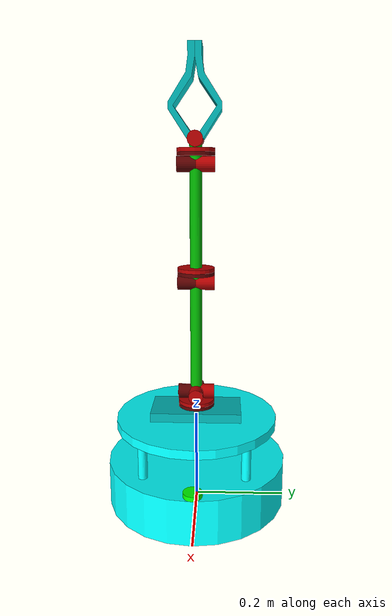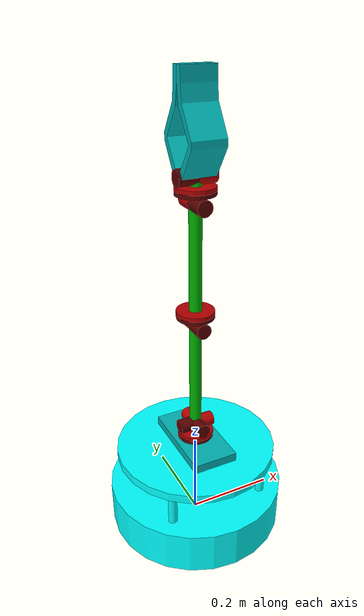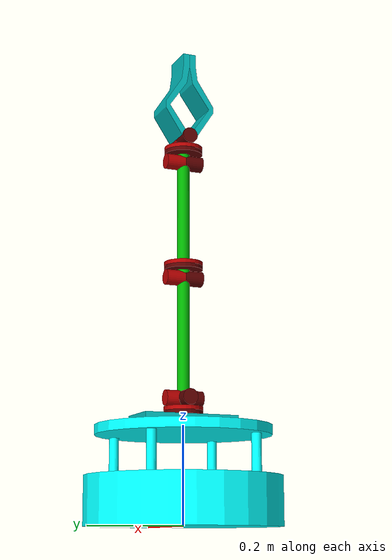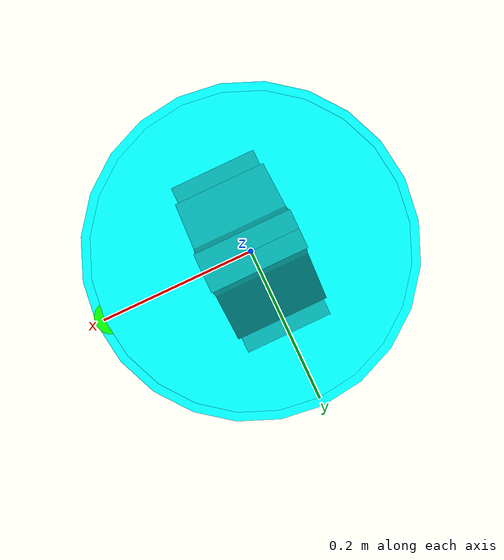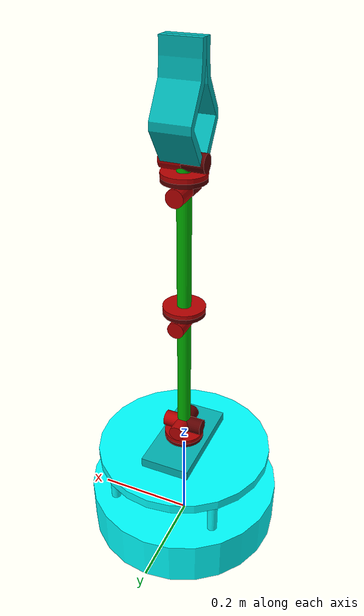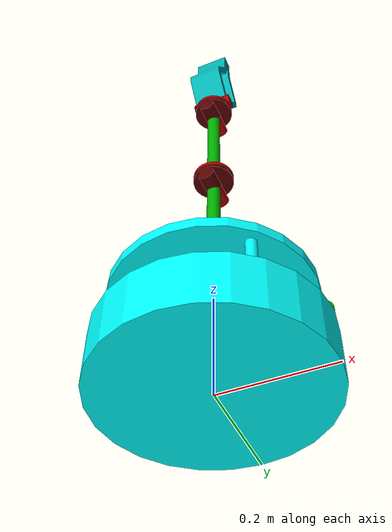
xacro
<?xml version="1.0"?>
<robot name="base_arm" xmlns:xacro="http://ros.org/wiki/xacro">

  <xacro:include filename="simple_move.urdf" />
  <link name="anchor_arm_base"/>
  <joint name="make_anchor" type="fixed">
    <parent link="base_link"/>
    <child  link="anchor_arm_base"/>
    <origin xyz="0.0 0.0 0.2" rpy="0 0 0"/>
  </joint>

  <xacro:include filename="arm.urdf" />
  <joint name="connect_arm" type="fixed">
    <parent link="anchor_arm_base"/>
    <child  link="arm_base"/>
  </joint>

  <gazebo>
    <plugin filename="libgazebo_ros_control.so" name="gazebo_ros_control">
      <robotNamespace>/</robotNamespace>
    </plugin>
  </gazebo>

  <xacro:include filename="gazebo_plugins.xacro" />
  <link name="base_camera_link" />
  <joint name="fixed_main_to_base_camera_link" type="fixed">
    <parent link="main"/>
    <child link="base_camera_link"/>
    <origin rpy="0 0 0" xyz="0.2 0.0 0.15"/>
  </joint>
  <link name="arm_camera_link" />
  <joint name="fixed_main_to_arm_camera_link" type="fixed">
    <parent link="ELBOW_Y_lk"/>
    <child  link="arm_camera_link"/>
    <origin xyz="-0.1 0.12 0" rpy="-1.5707963267948966 0 1.5707963267948966"/>
  </joint>
  <link name="hand_camera_link" />
  <joint name="fixed_main_to_hand_camera_link" type="fixed">
    <parent link="WRIST_Y_lk"/>
    <child  link="hand_camera_link"/>
    <origin xyz="-0.07 0.025 0" rpy="-1.5707963267948966 0 1.5707963267948966"/>
  </joint>
  <xacro:add_gazebo_camera camera_name="base_camera" frame="base_camera_frame" link_name="base_camera_link"
                           rpy="-1.5707963267948966 0 -1.5707963267948966"/>
  <xacro:add_gazebo_camera camera_name="arm_camera"  frame="arm_camera_frame"  link_name="arm_camera_link"
                           rpy="-1.5707963267948966 0 -1.5707963267948966"/>
  <xacro:add_gazebo_camera camera_name="hand_camera" frame="hand_camera_frame" link_name="hand_camera_link"
                           rpy="-1.5707963267948966 0 -1.5707963267948966"/>
</robot>

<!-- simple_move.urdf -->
<!-- |    This document was autogenerated by xacro from hoge.urdf                      | -->
<!-- |    EDITING THIS FILE BY HAND IS NOT RECOMMENDED                                 | -->
<robot name="Simple" xmlns:controller="http://playerstage.sourceforge.net/gazebo/xmlschema/#controller" xmlns:interface="http://playerstage.sourceforge.net/gazebo/xmlschema/#interface" xmlns:sensor="http://playerstage.sourceforge.net/gazebo/xmlschema/#sensor">
  <link name="base_link"/>
  <link name="base_laser_link"/>
  <link name="main">
    <!-- main body -->
    <visual>
      <origin rpy="0 0 0" xyz="0 0 0"/>
      <geometry>
        <cylinder length="0.1" radius="0.2"/>
      </geometry>
      <material name="Cyan">
        <color rgba="0 1.0 1.0 1.0"/>
      </material>
    </visual>
    <!-- upper plate -->
    <visual>
      <origin rpy="0 0 0" xyz="0 0 0.14"/>
      <geometry>
        <cylinder length="0.02" radius="0.18"/>
      </geometry>
      <material name="Cyan">
        <color rgba="0 1.0 1.0 1.0"/>
      </material>
    </visual>
    <!-- poles -->
    <visual>
      <origin rpy="0 0 0" xyz="0.11 0.11 0.09"/>
      <geometry>
        <cylinder length="0.08" radius="0.01"/>
      </geometry>
      <material name="Cyan">
        <color rgba="0 1.0 1.0 1.0"/>
      </material>
    </visual>
    <visual>
      <origin rpy="0 0 0" xyz="-0.11 0.11 0.09"/>
      <geometry>
        <cylinder length="0.08" radius="0.01"/>
      </geometry>
      <material name="Cyan">
        <color rgba="0 1.0 1.0 1.0"/>
      </material>
    </visual>
    <visual>
      <origin rpy="0 0 0" xyz="0.11 -0.11 0.09"/>
      <geometry>
        <cylinder length="0.08" radius="0.01"/>
      </geometry>
      <material name="Cyan">
        <color rgba="0 1.0 1.0 1.0"/>
      </material>
    </visual>
    <visual>
      <origin rpy="0 0 0" xyz="-0.11 -0.11 0.09"/>
      <geometry>
        <cylinder length="0.08" radius="0.01"/>
      </geometry>
      <material name="Cyan">
        <color rgba="0 1.0 1.0 1.0"/>
      </material>
    </visual>
    <!-- marker -->
    <visual>
      <origin rpy="0 0 0" xyz="0.18 0 0.055"/>
      <geometry>
        <cylinder length="0.01" radius="0.02"/>
      </geometry>
      <material name="Green">
        <color rgba="0.0 1.0 0.0 1.0"/>
      </material>
    </visual>
    <!-- collisions -->
    <collision>
      <origin rpy="0 0 0" xyz="0 0 0"/>
      <geometry>
        <cylinder length="0.1" radius="0.2"/>
      </geometry>
    </collision>
    <inertial>
      <mass value="10.0"/>
      <origin rpy="0 0 0" xyz="0 0 0"/>
      <inertia ixx="1.5" ixy="0" ixz="0" iyy="1.5" iyz="0" izz="2.4"/>
    </inertial>
  </link>
  <joint name="fixed_base_link_to_main" type="fixed">
    <parent link="base_link"/>
    <child link="main"/>
    <origin rpy="0 0 0" xyz="0.0 0.0 0.05"/>
  </joint>
  <joint name="fixed_main_to_baselaser_link" type="fixed">
    <parent link="main"/>
    <child link="base_laser_link"/>
    <origin rpy="0 0 0" xyz="0.2 0.0 0.15"/>
  </joint>
  <!-- hokuyo -->
  <gazebo reference="base_laser_link">
    <sensor name="head_hokuyo_sensor" type="ray">
      <pose>0 0 0 0 0 0</pose>
      <visualize>false</visualize>
      <update_rate>40</update_rate>
      <ray>
        <scan>
          <horizontal>
            <samples>1000</samples>
            <resolution>1</resolution>
            <min_angle>-2.35619449</min_angle>
            <max_angle>2.35619449</max_angle>
          </horizontal>
        </scan>
        <range>
          <min>0.5</min>
          <max>30.0</max>
          <resolution>0.01</resolution>
        </range>
        <noise>
          <type>gaussian</type>
          <mean>0.0</mean>
          <stddev>0.01</stddev>
        </noise>
      </ray>
      <plugin filename="libgazebo_ros_laser.so" name="gazebo_ros_head_hokuyo_controller">
        <topicName>scan</topicName>
        <frameName>base_laser_link</frameName>
      </plugin>
    </sensor>
  </gazebo>
  <!-- Base control -->
  <gazebo>
    <!--plugin filename="libgazebo_ros_planar_force_move.so" name="cmd_vel_controller"-->
    <plugin filename="libgazebo_ros_planar_move.so" name="cmd_vel_controller">
      <commandTopic>cmd_vel</commandTopic>
      <odometryTopic>odom</odometryTopic>
      <odometryFrame>odom</odometryFrame>
      <odometryRate>40.0</odometryRate>
      <robotBaseFrame>base_link</robotBaseFrame>
      <useForceFeedback>true</useForceFeedback>
      <appliedForceLink>base_link</appliedForceLink>
      <forceGainX>24000</forceGainX>
      <forceGainY>24000</forceGainY>
      <forceGainRot>6000</forceGainRot>
    </plugin>
  </gazebo>
</robot>

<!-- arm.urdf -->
<robot name="BodyBuilder" xmlns:xi="http://www.w3.org/2001/Xinclude" xmlns:gazebo="http://playerstage.sourceforge.net/gazebo/xmlschema/#gz" xmlns:model="http://playerstage.sourceforge.net/gazebo/xmlschema/#model" xmlns:sensor="http://playerstage.sourceforge.net/gazebo/xmlschema/#sensor" xmlns:body="http://playerstage.sourceforge.net/gazebo/xmlschema/#body" xmlns:geom="http://playerstage.sourceforge.net/gazebo/xmlschema/#geom" xmlns:joint="http://playerstage.sourceforge.net/gazebo/xmlschema/#joint" xmlns:interface="http://playerstage.sourceforge.net/gazebo/xmlschema/#interface" xmlns:rendering="http://playerstage.sourceforge.net/gazebo/xmlschema/#rendering" xmlns:renderable="http://playerstage.sourceforge.net/gazebo/xmlschema/#renderable" xmlns:controller="http://playerstage.sourceforge.net/gazebo/xmlschema/#controller" xmlns:physics="http://playerstage.sourceforge.net/gazebo/xmlschema/#physics" xmlns:xacro="http://www.ros.org/wiki/xacro">
	<xacro:macro name="gz_trans_pos" params="joint_name">
		<transmission name="${joint_name}_trans">
			<type>transmission_interface/SimpleTransmission</type>
			<joint name="${joint_name}">
				<hardwareInterface>hardware_interface/PositionJointInterface</hardwareInterface>
			</joint>
			<actuator name="${joint_name}_motor">
				<hardwareInterface>hardware_interface/PositionJointInterface</hardwareInterface>
			</actuator>
		</transmission>
	</xacro:macro>
	<xacro:macro name="gz_trans_vel" params="joint_name">
		<transmission name="${joint_name}_trans">
			<type>transmission_interface/SimpleTransmission</type>
			<joint name="${joint_name}">
				<hardwareInterface>hardware_interface/VelocityJointInterface</hardwareInterface>
			</joint>
			<actuator name="${joint_name}_motor">
				<hardwareInterface>hardware_interface/VelocityJointInterface</hardwareInterface>
			</actuator>
		</transmission>
	</xacro:macro>
	<xacro:macro name="gz_trans_eff" params="joint_name">
		<transmission name="${joint_name}_trans">
			<type>transmission_interface/SimpleTransmission</type>
			<joint name="${joint_name}">
				<hardwareInterface>hardware_interface/EffortJointInterface</hardwareInterface>
			</joint>
			<actuator name="${joint_name}_motor">
				<hardwareInterface>hardware_interface/EffortJointInterface</hardwareInterface>
			</actuator>
		</transmission>
	</xacro:macro>
	<link name="arm_base">
		<visual>
			<origin xyz="0.000000000000e+00 0.000000000000e+00 1.000000000000e-02" rpy="0.000000000000e+00 -0.000000000000e+00 0.000000000000e+00" />
			<geometry>
				<box size="1.000000000000e-01 2.000000000000e-01 2.000000000000e-02" />
			</geometry>
			<material name="mat__0">
				<color rgba="0 0.7 0.7 1" />
			</material>
		</visual>
		<visual>
			<origin xyz="0.000000000000e+00 -8.881784197001e-19 2.600000000000e-02" rpy="-1.608122649677e-16 -0.000000000000e+00 0.000000000000e+00" />
			<geometry>
				<cylinder radius="0.040000000000000001" length="0.0080000000000000002" />
			</geometry>
			<material name="mat__1">
				<color rgba="0.35 0 0 1" />
			</material>
		</visual>
		<visual>
			<origin xyz="0.000000000000e+00 3.330669073875e-18 1.500000000000e-02" rpy="-1.608122649677e-16 -0.000000000000e+00 0.000000000000e+00" />
			<geometry>
				<cylinder radius="0.0132" length="0.029999999999999999" />
			</geometry>
			<material name="mat__2">
				<color rgba="0 0.7 0 1" />
			</material>
		</visual>
		<collision>
			<origin xyz="0.000000000000e+00 0.000000000000e+00 1.000000000000e-02" rpy="0.000000000000e+00 -0.000000000000e+00 0.000000000000e+00" />
			<geometry>
				<box size="1.000000000000e-01 2.000000000000e-01 2.000000000000e-02" />
			</geometry>
			<material name="mat__3">
				<color rgba="0 0.7 0.7 1" />
			</material>
		</collision>
		<collision>
			<origin xyz="0.000000000000e+00 -8.881784197001e-19 2.600000000000e-02" rpy="-1.608122649677e-16 -0.000000000000e+00 0.000000000000e+00" />
			<geometry>
				<cylinder radius="0.040000000000000001" length="0.0080000000000000002" />
			</geometry>
			<material name="mat__4">
				<color rgba="0.35 0 0 1" />
			</material>
		</collision>
		<collision>
			<origin xyz="0.000000000000e+00 3.330669073875e-18 1.500000000000e-02" rpy="-1.608122649677e-16 -0.000000000000e+00 0.000000000000e+00" />
			<geometry>
				<cylinder radius="0.0132" length="0.029999999999999999" />
			</geometry>
			<material name="mat__5">
				<color rgba="0 0.7 0 1" />
			</material>
		</collision>
		<inertial>
			<mass value="0.45663411908479401" />
			<origin xyz="0.000000000000e+00 4.156409787513e-20 1.158881434989e-02" />
			<inertia ixx="0.0013744652662453566" ixy="0" ixz="0" iyy="0.00037446526624535631" iyz="3.7374454579009944e-21" izz="0.0017002672368287403" />
		</inertial>
	</link>
	<link name="BASE_Y_lk">
		<visual>
			<origin xyz="0.000000000000e+00 4.000000000000e-03 7.703719777549e-34" rpy="-1.570796326795e+00 -0.000000000000e+00 0.000000000000e+00" />
			<geometry>
				<cylinder radius="0.040000000000000001" length="0.0080000000000000002" />
			</geometry>
			<material name="mat__6">
				<color rgba="0.7 0 0 1" />
			</material>
		</visual>
		<visual>
			<origin xyz="-2.000000000000e-02 2.500000000000e-02 9.992007221626e-18" rpy="-3.141592653590e+00 -1.570796326795e+00 0.000000000000e+00" />
			<geometry>
				<cylinder radius="0.016" length="0.040000000000000001" />
			</geometry>
			<material name="mat__7">
				<color rgba="0.35 0 0 1" />
			</material>
		</visual>
		<visual>
			<origin xyz="0.000000000000e+00 1.250000000000e-02 -7.703719777549e-34" rpy="-1.570796326795e+00 -0.000000000000e+00 0.000000000000e+00" />
			<geometry>
				<cylinder radius="0.0132" length="0.025000000000000001" />
			</geometry>
			<material name="mat__8">
				<color rgba="0 0.7 0 1" />
			</material>
		</visual>
		<collision>
			<origin xyz="0.000000000000e+00 4.000000000000e-03 7.703719777549e-34" rpy="-1.570796326795e+00 -0.000000000000e+00 0.000000000000e+00" />
			<geometry>
				<cylinder radius="0.040000000000000001" length="0.0080000000000000002" />
			</geometry>
			<material name="mat__9">
				<color rgba="0.7 0 0 1" />
			</material>
		</collision>
		<collision>
			<origin xyz="-2.000000000000e-02 2.500000000000e-02 9.992007221626e-18" rpy="-3.141592653590e+00 -1.570796326795e+00 0.000000000000e+00" />
			<geometry>
				<cylinder radius="0.016" length="0.040000000000000001" />
			</geometry>
			<material name="mat__10">
				<color rgba="0.35 0 0 1" />
			</material>
		</collision>
		<collision>
			<origin xyz="0.000000000000e+00 1.250000000000e-02 -7.703719777549e-34" rpy="-1.570796326795e+00 -0.000000000000e+00 0.000000000000e+00" />
			<geometry>
				<cylinder radius="0.0132" length="0.025000000000000001" />
			</geometry>
			<material name="mat__11">
				<color rgba="0 0.7 0 1" />
			</material>
		</collision>
		<inertial>
			<mass value="0.086067072337745965" />
			<origin xyz="-7.475543875018e-03 1.320083223828e-02 3.734784419238e-18" />
			<inertia ixx="2.9615646440363949e-05" ixy="7.5915630097784371e-06" ixz="4.5211444592249744e-21" iyy="4.7768534147727311e-05" iyz="-3.7927476208569014e-21" izz="3.990430566799044e-05" />
		</inertial>
	</link>
	<joint name="BASE_Y" type="continuous">
		<parent link="arm_base" />
		<child link="BASE_Y_lk" />
		<origin xyz="0.000000000000e+00 0.000000000000e+00 3.000000000000e-02" rpy="1.570796326795e+00 -0.000000000000e+00 0.000000000000e+00" />
		<axis xyz="0.000000000000e+00 1.000000000000e+00 0.000000000000e+00" />
		<limit lower="-1.7976931348623157e+3" upper="1.7976931348623157e+3" velocity="1.7976931348623157e+3" effort="1.7976931348623157e+3" />
	</joint>
	<xacro:gz_trans_eff joint_name="BASE_Y" />
	<link name="BASE_R_lk">
		<visual>
			<origin xyz="0.000000000000e+00 2.000000000000e-02 0.000000000000e+00" rpy="-1.570796326795e+00 -0.000000000000e+00 0.000000000000e+00" />
			<geometry>
				<cylinder radius="0.016" length="0.040000000000000001" />
			</geometry>
			<material name="mat__12">
				<color rgba="0.7 0 0 1" />
			</material>
		</visual>
		<visual>
			<origin xyz="2.000000000000e-02 -4.440892098501e-18 0.000000000000e+00" rpy="-1.570796326795e+00 -0.000000000000e+00 1.570796326795e+00" />
			<geometry>
				<cylinder radius="0.016" length="0.040000000000000001" />
			</geometry>
			<material name="mat__13">
				<color rgba="0.35 0 0 1" />
			</material>
		</visual>
		<collision>
			<origin xyz="0.000000000000e+00 2.000000000000e-02 0.000000000000e+00" rpy="-1.570796326795e+00 -0.000000000000e+00 0.000000000000e+00" />
			<geometry>
				<cylinder radius="0.016" length="0.040000000000000001" />
			</geometry>
			<material name="mat__14">
				<color rgba="0.7 0 0 1" />
			</material>
		</collision>
		<collision>
			<origin xyz="2.000000000000e-02 -4.440892098501e-18 0.000000000000e+00" rpy="-1.570796326795e+00 -0.000000000000e+00 1.570796326795e+00" />
			<geometry>
				<cylinder radius="0.016" length="0.040000000000000001" />
			</geometry>
			<material name="mat__15">
				<color rgba="0.35 0 0 1" />
			</material>
		</collision>
		<inertial>
			<mass value="0.064339817545518957" />
			<origin xyz="1.000000000000e-02 1.000000000000e-02 0.000000000000e+00" />
			<inertia ixx="1.6899925408622984e-05" ixy="6.433981754551899e-06" ixz="0" iyy="1.689992540862298e-05" iyz="0" izz="2.5564354171419536e-05" />
		</inertial>
	</link>
	<joint name="BASE_R" type="continuous">
		<parent link="BASE_Y_lk" />
		<child link="BASE_R_lk" />
		<origin xyz="0.000000000000e+00 2.500000000000e-02 5.551115123126e-18" rpy="-1.570796326795e+00 -1.570796326795e+00 0.000000000000e+00" />
		<axis xyz="0.000000000000e+00 1.000000000000e+00 0.000000000000e+00" />
		<limit lower="-1.7976931348623157e+3" upper="1.7976931348623157e+3" velocity="1.7976931348623157e+3" effort="1.7976931348623157e+3" />
	</joint>
	<xacro:gz_trans_eff joint_name="BASE_R" />
	<link name="BASE_P_lk">
		<visual>
			<origin xyz="0.000000000000e+00 2.000000000000e-02 0.000000000000e+00" rpy="-1.570796326795e+00 -0.000000000000e+00 0.000000000000e+00" />
			<geometry>
				<cylinder radius="0.016" length="0.040000000000000001" />
			</geometry>
			<material name="mat__16">
				<color rgba="0.7 0 0 1" />
			</material>
		</visual>
		<visual>
			<origin xyz="0.000000000000e+00 -2.000000000000e-02 2.500000000000e-01" rpy="-1.570796326795e+00 -0.000000000000e+00 0.000000000000e+00" />
			<geometry>
				<cylinder radius="0.016" length="0.040000000000000001" />
			</geometry>
			<material name="mat__17">
				<color rgba="0.35 0 0 1" />
			</material>
		</visual>
		<visual>
			<origin xyz="0.000000000000e+00 2.775557561563e-17 1.250000000000e-01" rpy="-1.608122649677e-16 -0.000000000000e+00 0.000000000000e+00" />
			<geometry>
				<cylinder radius="0.0132" length="0.25" />
			</geometry>
			<material name="mat__18">
				<color rgba="0 0.7 0 1" />
			</material>
		</visual>
		<collision>
			<origin xyz="0.000000000000e+00 2.000000000000e-02 0.000000000000e+00" rpy="-1.570796326795e+00 -0.000000000000e+00 0.000000000000e+00" />
			<geometry>
				<cylinder radius="0.016" length="0.040000000000000001" />
			</geometry>
			<material name="mat__19">
				<color rgba="0.7 0 0 1" />
			</material>
		</collision>
		<collision>
			<origin xyz="0.000000000000e+00 -2.000000000000e-02 2.500000000000e-01" rpy="-1.570796326795e+00 -0.000000000000e+00 0.000000000000e+00" />
			<geometry>
				<cylinder radius="0.016" length="0.040000000000000001" />
			</geometry>
			<material name="mat__20">
				<color rgba="0.35 0 0 1" />
			</material>
		</collision>
		<collision>
			<origin xyz="0.000000000000e+00 2.775557561563e-17 1.250000000000e-01" rpy="-1.608122649677e-16 -0.000000000000e+00 0.000000000000e+00" />
			<geometry>
				<cylinder radius="0.0132" length="0.25" />
			</geometry>
			<material name="mat__21">
				<color rgba="0 0.7 0 1" />
			</material>
		</collision>
		<inertial>
			<mass value="0.20118759353589033" />
			<origin xyz="0.000000000000e+00 1.887933906647e-17 1.250000000000e-01" />
			<inertia ixx="0.001762451889234582" ixy="0" ixz="0" iyy="0.0017322550681998848" iyz="0.00016084954386379722" izz="5.0354495924804477e-05" />
		</inertial>
	</link>
	<joint name="BASE_P" type="continuous">
		<parent link="BASE_R_lk" />
		<child link="BASE_P_lk" />
		<origin xyz="0.000000000000e+00 0.000000000000e+00 0.000000000000e+00" rpy="2.465190328816e-32 2.465190328816e-32 1.570796326795e+00" />
		<axis xyz="0.000000000000e+00 1.000000000000e+00 0.000000000000e+00" />
		<limit lower="-1.7976931348623157e+3" upper="1.7976931348623157e+3" velocity="1.7976931348623157e+3" effort="1.7976931348623157e+3" />
	</joint>
	<xacro:gz_trans_eff joint_name="BASE_P" />
	<link name="ELBOW_P_lk">
		<visual>
			<origin xyz="0.000000000000e+00 2.000000000000e-02 0.000000000000e+00" rpy="-1.570796326795e+00 -0.000000000000e+00 0.000000000000e+00" />
			<geometry>
				<cylinder radius="0.016" length="0.040000000000000001" />
			</geometry>
			<material name="mat__22">
				<color rgba="0.7 0 0 1" />
			</material>
		</visual>
		<visual>
			<origin xyz="0.000000000000e+00 -8.881784197001e-19 2.100000000000e-02" rpy="-1.608122649677e-16 -0.000000000000e+00 0.000000000000e+00" />
			<geometry>
				<cylinder radius="0.040000000000000001" length="0.0080000000000000002" />
			</geometry>
			<material name="mat__23">
				<color rgba="0.35 0 0 1" />
			</material>
		</visual>
		<visual>
			<origin xyz="0.000000000000e+00 2.775557561563e-18 1.250000000000e-02" rpy="-1.608122649677e-16 -0.000000000000e+00 0.000000000000e+00" />
			<geometry>
				<cylinder radius="0.0132" length="0.025000000000000022" />
			</geometry>
			<material name="mat__24">
				<color rgba="0 0.7 0 1" />
			</material>
		</visual>
		<collision>
			<origin xyz="0.000000000000e+00 2.000000000000e-02 0.000000000000e+00" rpy="-1.570796326795e+00 -0.000000000000e+00 0.000000000000e+00" />
			<geometry>
				<cylinder radius="0.016" length="0.040000000000000001" />
			</geometry>
			<material name="mat__25">
				<color rgba="0.7 0 0 1" />
			</material>
		</collision>
		<collision>
			<origin xyz="0.000000000000e+00 -8.881784197001e-19 2.100000000000e-02" rpy="-1.608122649677e-16 -0.000000000000e+00 0.000000000000e+00" />
			<geometry>
				<cylinder radius="0.040000000000000001" length="0.0080000000000000002" />
			</geometry>
			<material name="mat__26">
				<color rgba="0.35 0 0 1" />
			</material>
		</collision>
		<collision>
			<origin xyz="0.000000000000e+00 2.775557561563e-18 1.250000000000e-02" rpy="-1.608122649677e-16 -0.000000000000e+00 0.000000000000e+00" />
			<geometry>
				<cylinder radius="0.0132" length="0.025000000000000022" />
			</geometry>
			<material name="mat__27">
				<color rgba="0 0.7 0 1" />
			</material>
		</collision>
		<inertial>
			<mass value="0.086067072337745978" />
			<origin xyz="0.000000000000e+00 7.475543875018e-03 1.179916776172e-02" />
			<inertia ixx="3.9904305667990454e-05" ixy="0" ixz="0" iyy="2.9615646440363966e-05" iyz="7.5915630097784473e-06" izz="4.7768534147727311e-05" />
		</inertial>
	</link>
	<joint name="ELBOW_P" type="continuous">
		<parent link="BASE_P_lk" />
		<child link="ELBOW_P_lk" />
		<origin xyz="-1.848892746612e-32 6.162975822039e-33 2.500000000000e-01" rpy="-2.465190328816e-32 4.930380657631e-32 -6.077163357286e-64" />
		<axis xyz="0.000000000000e+00 1.000000000000e+00 0.000000000000e+00" />
		<limit lower="-1.7976931348623157e+3" upper="1.7976931348623157e+3" velocity="1.7976931348623157e+3" effort="1.7976931348623157e+3" />
	</joint>
	<xacro:gz_trans_eff joint_name="ELBOW_P" />
	<link name="ELBOW_Y_lk">
		<visual>
			<origin xyz="0.000000000000e+00 4.000000000000e-03 0.000000000000e+00" rpy="-1.570796326795e+00 -0.000000000000e+00 0.000000000000e+00" />
			<geometry>
				<cylinder radius="0.040000000000000001" length="0.0080000000000000002" />
			</geometry>
			<material name="mat__28">
				<color rgba="0.7 0 0 1" />
			</material>
		</visual>
		<visual>
			<origin xyz="0.000000000000e+00 2.250000000000e-01 2.000000000000e-02" rpy="-3.141592653590e+00 -0.000000000000e+00 0.000000000000e+00" />
			<geometry>
				<cylinder radius="0.016" length="0.040000000000000001" />
			</geometry>
			<material name="mat__29">
				<color rgba="0.35 0 0 1" />
			</material>
		</visual>
		<visual>
			<origin xyz="0.000000000000e+00 1.125000000000e-01 -1.232595164408e-32" rpy="-1.570796326795e+00 -0.000000000000e+00 0.000000000000e+00" />
			<geometry>
				<cylinder radius="0.0132" length="0.22500000000000003" />
			</geometry>
			<material name="mat__30">
				<color rgba="0 0.7 0 1" />
			</material>
		</visual>
		<collision>
			<origin xyz="0.000000000000e+00 4.000000000000e-03 0.000000000000e+00" rpy="-1.570796326795e+00 -0.000000000000e+00 0.000000000000e+00" />
			<geometry>
				<cylinder radius="0.040000000000000001" length="0.0080000000000000002" />
			</geometry>
			<material name="mat__31">
				<color rgba="0.7 0 0 1" />
			</material>
		</collision>
		<collision>
			<origin xyz="0.000000000000e+00 2.250000000000e-01 2.000000000000e-02" rpy="-3.141592653590e+00 -0.000000000000e+00 0.000000000000e+00" />
			<geometry>
				<cylinder radius="0.016" length="0.040000000000000001" />
			</geometry>
			<material name="mat__32">
				<color rgba="0.35 0 0 1" />
			</material>
		</collision>
		<collision>
			<origin xyz="0.000000000000e+00 1.125000000000e-01 -1.232595164408e-32" rpy="-1.570796326795e+00 -0.000000000000e+00 0.000000000000e+00" />
			<geometry>
				<cylinder radius="0.0132" length="0.22500000000000003" />
			</geometry>
			<material name="mat__33">
				<color rgba="0 0.7 0 1" />
			</material>
		</collision>
		<inertial>
			<mass value="0.1955452931300431" />
			<origin xyz="0.000000000000e+00 1.086956172482e-01 3.290276974488e-03" />
			<inertia ixx="0.0014360679781591028" ixy="0" ixz="0" iyy="5.9999069830746762e-05" iyz="-7.4830027659918938e-05" izz="0.0014230865258438817" />
		</inertial>
	</link>
	<joint name="ELBOW_Y" type="continuous">
		<parent link="ELBOW_P_lk" />
		<child link="ELBOW_Y_lk" />
		<origin xyz="1.047705889747e-32 1.642146637881e-48 2.500000000000e-02" rpy="1.570796326795e+00 4.930380657631e-32 9.115745035929e-64" />
		<axis xyz="0.000000000000e+00 1.000000000000e+00 0.000000000000e+00" />
		<limit lower="-1.7976931348623157e+3" upper="1.7976931348623157e+3" velocity="1.7976931348623157e+3" effort="1.7976931348623157e+3" />
	</joint>
	<xacro:gz_trans_eff joint_name="ELBOW_Y" />
	<link name="WRIST_P_lk">
		<visual>
			<origin xyz="0.000000000000e+00 2.000000000000e-02 0.000000000000e+00" rpy="-1.570796326795e+00 -0.000000000000e+00 0.000000000000e+00" />
			<geometry>
				<cylinder radius="0.016" length="0.040000000000000001" />
			</geometry>
			<material name="mat__34">
				<color rgba="0.7 0 0 1" />
			</material>
		</visual>
		<visual>
			<origin xyz="0.000000000000e+00 -8.881784197001e-19 2.100000000000e-02" rpy="-1.608122649677e-16 -0.000000000000e+00 0.000000000000e+00" />
			<geometry>
				<cylinder radius="0.040000000000000001" length="0.0080000000000000002" />
			</geometry>
			<material name="mat__35">
				<color rgba="0.35 0 0 1" />
			</material>
		</visual>
		<visual>
			<origin xyz="0.000000000000e+00 2.775557561563e-18 1.250000000000e-02" rpy="-1.608122649677e-16 -0.000000000000e+00 0.000000000000e+00" />
			<geometry>
				<cylinder radius="0.0132" length="0.025000000000000022" />
			</geometry>
			<material name="mat__36">
				<color rgba="0 0.7 0 1" />
			</material>
		</visual>
		<collision>
			<origin xyz="0.000000000000e+00 2.000000000000e-02 0.000000000000e+00" rpy="-1.570796326795e+00 -0.000000000000e+00 0.000000000000e+00" />
			<geometry>
				<cylinder radius="0.016" length="0.040000000000000001" />
			</geometry>
			<material name="mat__37">
				<color rgba="0.7 0 0 1" />
			</material>
		</collision>
		<collision>
			<origin xyz="0.000000000000e+00 -8.881784197001e-19 2.100000000000e-02" rpy="-1.608122649677e-16 -0.000000000000e+00 0.000000000000e+00" />
			<geometry>
				<cylinder radius="0.040000000000000001" length="0.0080000000000000002" />
			</geometry>
			<material name="mat__38">
				<color rgba="0.35 0 0 1" />
			</material>
		</collision>
		<collision>
			<origin xyz="0.000000000000e+00 2.775557561563e-18 1.250000000000e-02" rpy="-1.608122649677e-16 -0.000000000000e+00 0.000000000000e+00" />
			<geometry>
				<cylinder radius="0.0132" length="0.025000000000000022" />
			</geometry>
			<material name="mat__39">
				<color rgba="0 0.7 0 1" />
			</material>
		</collision>
		<inertial>
			<mass value="0.086067072337745978" />
			<origin xyz="0.000000000000e+00 7.475543875018e-03 1.179916776172e-02" />
			<inertia ixx="3.9904305667990461e-05" ixy="0" ixz="0" iyy="2.961564644036397e-05" iyz="7.5915630097784523e-06" izz="4.7768534147727311e-05" />
		</inertial>
	</link>
	<joint name="WRIST_P" type="continuous">
		<parent link="ELBOW_Y_lk" />
		<child link="WRIST_P_lk" />
		<origin xyz="-1.540743955510e-32 2.250000000000e-01 4.996003610813e-17" rpy="-1.570796326795e+00 -2.465190328816e-32 -4.930380657631e-32" />
		<axis xyz="0.000000000000e+00 1.000000000000e+00 0.000000000000e+00" />
		<limit lower="-1.7976931348623157e+3" upper="1.7976931348623157e+3" velocity="1.7976931348623157e+3" effort="1.7976931348623157e+3" />
	</joint>
	<xacro:gz_trans_eff joint_name="WRIST_P" />
	<link name="WRIST_Y_lk">
		<visual>
			<origin xyz="0.000000000000e+00 4.000000000000e-03 0.000000000000e+00" rpy="-1.570796326795e+00 -0.000000000000e+00 0.000000000000e+00" />
			<geometry>
				<cylinder radius="0.040000000000000001" length="0.0080000000000000002" />
			</geometry>
			<material name="mat__40">
				<color rgba="0.7 0 0 1" />
			</material>
		</visual>
		<visual>
			<origin xyz="-2.000000000000e-02 2.500000000000e-02 9.992007221626e-18" rpy="-3.141592653590e+00 -1.570796326795e+00 0.000000000000e+00" />
			<geometry>
				<cylinder radius="0.016" length="0.040000000000000001" />
			</geometry>
			<material name="mat__41">
				<color rgba="0.35 0 0 1" />
			</material>
		</visual>
		<visual>
			<origin xyz="-2.000000000000e-02 2.500000000000e-02 9.992007221626e-18" rpy="-3.141592653590e+00 -1.570796326795e+00 0.000000000000e+00" />
			<geometry>
				<cylinder radius="0.016" length="0.040000000000000001" />
			</geometry>
			<material name="mat__42">
				<color rgba="0.35 0 0 1" />
			</material>
		</visual>
		<visual>
			<origin xyz="0.000000000000e+00 1.250000000000e-02 0.000000000000e+00" rpy="-1.570796326795e+00 -0.000000000000e+00 0.000000000000e+00" />
			<geometry>
				<cylinder radius="0.0132" length="0.025000000000000022" />
			</geometry>
			<material name="mat__43">
				<color rgba="0 0.7 0 1" />
			</material>
		</visual>
		<visual>
			<origin xyz="0.000000000000e+00 1.250000000000e-02 0.000000000000e+00" rpy="-1.570796326795e+00 -0.000000000000e+00 0.000000000000e+00" />
			<geometry>
				<cylinder radius="0.0132" length="0.025000000000000022" />
			</geometry>
			<material name="mat__44">
				<color rgba="0 0.7 0 1" />
			</material>
		</visual>
		<collision>
			<origin xyz="0.000000000000e+00 4.000000000000e-03 0.000000000000e+00" rpy="-1.570796326795e+00 -0.000000000000e+00 0.000000000000e+00" />
			<geometry>
				<cylinder radius="0.040000000000000001" length="0.0080000000000000002" />
			</geometry>
			<material name="mat__45">
				<color rgba="0.7 0 0 1" />
			</material>
		</collision>
		<collision>
			<origin xyz="-2.000000000000e-02 2.500000000000e-02 9.992007221626e-18" rpy="-3.141592653590e+00 -1.570796326795e+00 0.000000000000e+00" />
			<geometry>
				<cylinder radius="0.016" length="0.040000000000000001" />
			</geometry>
			<material name="mat__46">
				<color rgba="0.35 0 0 1" />
			</material>
		</collision>
		<collision>
			<origin xyz="-2.000000000000e-02 2.500000000000e-02 9.992007221626e-18" rpy="-3.141592653590e+00 -1.570796326795e+00 0.000000000000e+00" />
			<geometry>
				<cylinder radius="0.016" length="0.040000000000000001" />
			</geometry>
			<material name="mat__47">
				<color rgba="0.35 0 0 1" />
			</material>
		</collision>
		<collision>
			<origin xyz="0.000000000000e+00 1.250000000000e-02 0.000000000000e+00" rpy="-1.570796326795e+00 -0.000000000000e+00 0.000000000000e+00" />
			<geometry>
				<cylinder radius="0.0132" length="0.025000000000000022" />
			</geometry>
			<material name="mat__48">
				<color rgba="0 0.7 0 1" />
			</material>
		</collision>
		<collision>
			<origin xyz="0.000000000000e+00 1.250000000000e-02 0.000000000000e+00" rpy="-1.570796326795e+00 -0.000000000000e+00 0.000000000000e+00" />
			<geometry>
				<cylinder radius="0.0132" length="0.025000000000000022" />
			</geometry>
			<material name="mat__49">
				<color rgba="0 0.7 0 1" />
			</material>
		</collision>
		<inertial>
			<mass value="0.13192175870954262" />
			<origin xyz="-9.754238902648e-03 1.600542960564e-02 4.873221277836e-18" />
			<inertia ixx="3.8490014544011007e-05" ixy="1.1574180361470074e-05" ixz="7.577352523064054e-21" iyy="6.0434943076303381e-05" iyz="-5.782464687810782e-21" izz="5.6135116552872243e-05" />
		</inertial>
	</link>
	<joint name="WRIST_Y" type="continuous">
		<parent link="WRIST_P_lk" />
		<child link="WRIST_Y_lk" />
		<origin xyz="9.244463733059e-33 2.736911063134e-49 2.500000000000e-02" rpy="1.570796326795e+00 4.930380657631e-32 2.465190328816e-32" />
		<axis xyz="0.000000000000e+00 1.000000000000e+00 0.000000000000e+00" />
		<limit lower="-1.7976931348623157e+3" upper="1.7976931348623157e+3" velocity="1.7976931348623157e+3" effort="1.7976931348623157e+3" />
	</joint>
	<xacro:gz_trans_eff joint_name="WRIST_Y" />
	<link name="GRIPPER0_lk">
		<visual>
			<origin xyz="0.000000000000e+00 2.000000000000e-02 0.000000000000e+00" rpy="-1.570796326795e+00 -0.000000000000e+00 0.000000000000e+00" />
			<geometry>
				<cylinder radius="0.016" length="0.040000000000000001" />
			</geometry>
			<material name="mat__50">
				<color rgba="0.7 0 0 1" />
			</material>
		</visual>
		<visual>
			<geometry>
				<mesh filename="package://irsl_mobile_arm/model/BodyBuilder_GRIPPER0_lk.dae" />
			</geometry>
		</visual>
		<collision>
			<origin xyz="0.000000000000e+00 2.000000000000e-02 0.000000000000e+00" rpy="-1.570796326795e+00 -0.000000000000e+00 0.000000000000e+00" />
			<geometry>
				<cylinder radius="0.016" length="0.040000000000000001" />
			</geometry>
			<material name="mat__51">
				<color rgba="0.7 0 0 1" />
			</material>
		</collision>
		<collision>
			<geometry>
				<mesh filename="package://irsl_mobile_arm/model/BodyBuilder_GRIPPER0_lk.stl" />
			</geometry>
		</collision>
		<inertial>
			<mass value="0.21978987015193907" />
			<origin xyz="-1.964929816291e-02 2.927333239006e-03 7.575149021598e-02" />
			<inertia ixx="0.00083441482670501815" ixy="-1.2642322577907088e-05" ixz="-1.6655085154564249e-05" iyy="0.00079797034509641396" iyz="4.8738369652698547e-05" izz="0.0001473261756837552" />
		</inertial>
	</link>
	<joint name="GRIPPER0" type="continuous">
		<parent link="WRIST_Y_lk" />
		<child link="GRIPPER0_lk" />
		<origin xyz="-6.162975822039e-34 2.500000000000e-02 5.551115123126e-18" rpy="-1.570796326795e+00 -1.570796326795e+00 0.000000000000e+00" />
		<axis xyz="0.000000000000e+00 1.000000000000e+00 0.000000000000e+00" />
		<limit lower="-1.7976931348623157e+3" upper="1.7976931348623157e+3" velocity="1.7976931348623157e+3" effort="1.7976931348623157e+3" />
	</joint>
	<xacro:gz_trans_eff joint_name="GRIPPER0" />
	<link name="GRIPPER1_lk">
		<visual>
			<origin xyz="0.000000000000e+00 2.000000000000e-02 0.000000000000e+00" rpy="-1.570796326795e+00 -0.000000000000e+00 0.000000000000e+00" />
			<geometry>
				<cylinder radius="0.016" length="0.040000000000000001" />
			</geometry>
			<material name="mat__52">
				<color rgba="0.7 0 0 1" />
			</material>
		</visual>
		<visual>
			<geometry>
				<mesh filename="package://irsl_mobile_arm/model/BodyBuilder_GRIPPER1_lk.dae" />
			</geometry>
		</visual>
		<collision>
			<origin xyz="0.000000000000e+00 2.000000000000e-02 0.000000000000e+00" rpy="-1.570796326795e+00 -0.000000000000e+00 0.000000000000e+00" />
			<geometry>
				<cylinder radius="0.016" length="0.040000000000000001" />
			</geometry>
			<material name="mat__53">
				<color rgba="0.7 0 0 1" />
			</material>
		</collision>
		<collision>
			<geometry>
				<mesh filename="package://irsl_mobile_arm/model/BodyBuilder_GRIPPER1_lk.stl" />
			</geometry>
		</collision>
		<inertial>
			<mass value="0.21978987015193907" />
			<origin xyz="1.964929816291e-02 2.927333239006e-03 7.575149021598e-02" />
			<inertia ixx="0.00083441482670501815" ixy="1.2642322577907061e-05" ixz="1.6655085154564277e-05" iyy="0.00079797034509641396" iyz="4.8738369652698506e-05" izz="0.00014732617568375517" />
		</inertial>
	</link>
	<joint name="GRIPPER1" type="continuous">
		<parent link="WRIST_Y_lk" />
		<child link="GRIPPER1_lk" />
		<origin xyz="-6.162975822039e-34 2.500000000000e-02 5.551115123126e-18" rpy="-1.570796326795e+00 -1.570796326795e+00 0.000000000000e+00" />
		<axis xyz="0.000000000000e+00 1.000000000000e+00 0.000000000000e+00" />
		<limit lower="-1.7976931348623157e+3" upper="1.7976931348623157e+3" velocity="1.7976931348623157e+3" effort="1.7976931348623157e+3" />
	</joint>
	<xacro:gz_trans_eff joint_name="GRIPPER1" />
</robot>

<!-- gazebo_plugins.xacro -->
<!-- COPY from https://github.com/agent-system/robot_assembler/blob/master/gazebo/gazebo_plugins.xacro -->
<robot xmlns:xacro="http://ros.org/wiki/xacro">
  <xacro:macro name="add_gazebo_ros_ft_sensor" params="joint_name rate:=100 topic:=ft_sensor" >
    <!-- Enable the Joint Feedback -->
    <gazebo reference="${joint_name}">
      <provideFeedback>true</provideFeedback>
    </gazebo>
    <!-- The ft_sensor plugin -->
    <gazebo>
      <plugin name="ft_sensor" filename="libgazebo_ros_ft_sensor.so">
        <updateRate>${rate}</updateRate>
        <topicName>${topic}</topicName>
        <jointName>${joint_name}</jointName>
      </plugin>
    </gazebo>
  </xacro:macro>
  <xacro:macro name="add_gazebo_range_sensor" params="link_name frame:=range_frame pose:='0 0 0 0 0 0' xyz:='0 0 0' rpy:='0 0 0' rate:=40 topic:=range_sensor visualize:=true" >
    <!-- create range frame-->
    <link name="${frame}" />
    <joint name="${frame}_fixed_joint" type="fixed">
      <parent link="${link_name}"/>
      <child link="${frame}"/>
      <origin xyz="${xyz}" rpy="${rpy}"/>
    </joint>
    <gazebo reference="${frame}">
      <sensor type="ray" name="range_sensor">
        <visualize>${visualize}</visualize>
        <update_rate>${rate}</update_rate>
        <ray>
          <scan>
            <horizontal>
              <samples>720</samples>
              <resolution>1</resolution>
              <min_angle>-1.570796</min_angle>
              <max_angle>1.570796</max_angle>
            </horizontal>
          </scan>
          <range>
            <min>0.10</min>
            <max>30.0</max>
            <resolution>0.01</resolution>
          </range>
          <noise>
            <type>gaussian</type>
            <mean>0.0</mean>
            <stddev>0.01</stddev>
          </noise>
        </ray>
        <plugin name="gazebo_ros_head_hokuyo_controller" filename="libgazebo_ros_laser.so">
          <topicName>${topic}</topicName>
          <frameName>${frame}</frameName>
        </plugin>
      </sensor>
    </gazebo>
  </xacro:macro>
  <xacro:macro name="add_gazebo_imu_sensor" params="link_name frame:=imu_frame pose:='0 0 0 0 0 0' pos:='0 0 0' rpy:='0 0 0' rate:=200 topic:=imu_sensor visualize:=false" >
    <gazebo reference="${link_name}">
      <gravity>true</gravity>
      <sensor name="imu_sensor" type="imu">
        <always_on>true</always_on>
        <update_rate>${rate}</update_rate>
        <visualize>${visualize}</visualize>
        <topic>${topic}</topic>
        <pose>${pose}</pose>
        <plugin filename="libgazebo_ros_imu_sensor.so" name="imu_plugin">
          <topicName>${topic}</topicName>
          <bodyName>${link_name}</bodyName>
          <updateRateHZ>${rate}</updateRateHZ>
          <gaussianNoise>0.0</gaussianNoise>
          <xyzOffset>${pos}</xyzOffset>
          <rpyOffset>${rpy}</rpyOffset>
          <frameName>${frame}</frameName>
          <initialOrientationAsReference>false</initialOrientationAsReference>
        </plugin>
      </sensor>
    </gazebo>
  </xacro:macro>
  <xacro:macro name="add_gazebo_camera" params="link_name camera_name=camera frame:=camera_frame pose:='0 0 0 0 0 0' xyz:='0 0 0' rpy:='0 0 0' rate:=30.0 width:=800 height:=600 fov:=1.578 visualize:=true" >
    <!-- create camera frame-->
    <link name="${frame}" />
    <joint name="${frame}_fixed_joint" type="fixed">
      <parent link="${link_name}"/>
      <child link="${frame}"/>
      <origin xyz="${xyz}" rpy="${rpy}"/>
    </joint>
    <!-- camera -->
    <gazebo reference="${link_name}">
      <sensor name="${link_name}_camera" type="camera" >
        <pose>${pose}</pose>
        <always_on>true</always_on>
        <update_rate>${rate}</update_rate>
        <visualize>${visualize}</visualize>
        <camera name="${link_name}_camera">
          <horizontal_fov>${fov}</horizontal_fov>
          <image>
            <width>${width}</width>
            <height>${height}</height>
            <format>B8G8R8</format>
          </image>
          <clip>
            <near>0.02</near>
            <far>300</far>
          </clip>
          <noise>
            <type>gaussian</type>
            <!-- Noise is sampled independently per pixel on each frame.
                 That pixel's noise value is added to each of its color
                 channels, which at that point lie in the range [0,1]. -->
            <mean>0.0</mean>
            <stddev>0.007</stddev>
          </noise>
        </camera>
        <plugin name="camera_controller" filename="libgazebo_ros_camera.so">
          <alwaysOn>true</alwaysOn>
          <updateRate>0.0</updateRate>
          <cameraName>${camera_name}</cameraName>
          <imageTopicName>image_raw</imageTopicName>
          <cameraInfoTopicName>camera_info</cameraInfoTopicName>
          <frameName>${frame}</frameName>
          <hackBaseline>0.07</hackBaseline>
          <distortionK1>0.0</distortionK1>
          <distortionK2>0.0</distortionK2>
          <distortionK3>0.0</distortionK3>
          <distortionT1>0.0</distortionT1>
          <distortionT2>0.0</distortionT2>
        </plugin>
      </sensor>
    </gazebo>
  </xacro:macro>
  <xacro:macro name="add_gazebo_depth_camera" params="link_name camera_name=depth_cam frame:=depth_frame pose:='0 0 0 0 0 0' xyz:='0 0 0' rpy:='0 0 0' rate:=30.0 width:=800 height:=600 fov:=1.578 visualize:=true" >
    <!-- create camera frame-->
    <link name="${frame}" />
    <joint name="${frame}_fixed_joint" type="fixed">
      <parent link="${link_name}"/>
      <child link="${frame}"/>
      <origin xyz="${xyz}" rpy="${rpy}"/>
    </joint>
    <gazebo reference="${link_name}">
      <sensor name="${link_name}_depth_camera" type="depth">
        <pose>${pose}</pose>
        <always_on>true</always_on>
        <update_rate>${rate}</update_rate>
        <visualize>${visualize}</visualize>
        <camera>
          <horizontal_fov>${fov}</horizontal_fov>
          <image>
            <width>${width}</width>
            <height>${height}</height>
            <format>R8G8B8</format>
          </image>
          <clip near="0.01" far="100.0" />
          <save enabled="false" path="/tmp" />
          <depth_camera output="points" />
        </camera>
        <plugin name="plugin_1" filename="libgazebo_ros_depth_camera.so">
          <alwaysOn>1</alwaysOn>
          <updateRate>${rate}</updateRate>
          <imageTopicName>image_raw</imageTopicName>
          <pointCloudTopicName>points</pointCloudTopicName>
          <cameraInfoTopicName>camera_info</cameraInfoTopicName>
          <cameraName>${camera_name}</cameraName>
          <frameName>${frame}</frameName>
          <pointCloudCutoff>0.001</pointCloudCutoff>
          <distortionK1>0.00000001</distortionK1>
          <distortionK2>0.00000001</distortionK2>
          <distortionK3>0.00000001</distortionK3>
          <distortionT1>0.00000001</distortionT1>
          <distortionT2>0.00000001</distortionT2>
        </plugin>
      </sensor>
    </gazebo>
  </xacro:macro>
  <xacro:macro name="add_gazebo_fisheye_camera" params="link_name camera_name=camera frame:=camera_frame pose:='0 0 0 0 0 0' xyz:='0 0 0' rpy:='0 0 0' rate:=30.0 width:=1024 height:=1024 fov:=3.14 visualize:=false" >
    <!-- create camera frame-->
    <link name="${frame}" />
    <joint name="${frame}_fixed_joint" type="fixed">
      <parent link="${link_name}"/>
      <child link="${frame}"/>
      <origin xyz="${xyz}" rpy="${rpy}"/>
    </joint>
    <!-- camera -->
    <gazebo reference="${link_name}">
      <sensor name="${link_name}_camera" type="wideanglecamera" >
        <pose>${pose}</pose>
        <always_on>true</always_on>
        <update_rate>${rate}</update_rate>
        <visualize>${visualize}</visualize>
        <camera name="${link_name}_camera">
          <horizontal_fov>${fov}</horizontal_fov>
          <image>
            <width>${width}</width>
            <height>${height}</height>
            <format>R8G8B8</format>
          </image>
          <clip>
            <near>0.02</near>
            <far>300</far>
          </clip>
          <lens> <!-- for Fisheye -->
            <!-- type: gnomonical, stereographic, equidistant, equisolid_angle, orthographic, custom -->
            <!-- More information here: https://en.wikipedia.org/wiki/Fisheye_lens#Mapping_function -->
            <type>custom</type>  <!-- manually defined mapping function r = c1*f*fun(theta/c2 + c3) -->
            <custom_function>
              <c1>2</c1>
              <c2>2</c2>
              <c3>0</c3>
              <f>0.63661977</f> <!-- ( 2.0 / pi ) -->
              <fun>id</fun> <!-- one of sin,tan,id -->
            </custom_function>
            <!-- if it is set to `true` your horizontal FOV will ramain as defined -->
            <!-- othervise it depends on lens type and custom function, if there is one -->
            <scale_to_hfov>false</scale_to_hfov>
            <cutoff_angle>1.5707</cutoff_angle> <!-- clip everything that is outside of this angle -->
            <!-- resolution of the cubemap texture, the highter it is - the sharper is your image -->
            <env_texture_size>2048</env_texture_size>
          </lens>
        </camera>
        <plugin name="camera_controller" filename="libgazebo_ros_camera.so">
          <alwaysOn>true</alwaysOn>
          <updateRate>0.0</updateRate>
          <cameraName>${camera_name}</cameraName>
          <imageTopicName>image_raw</imageTopicName>
          <cameraInfoTopicName>camera_info</cameraInfoTopicName>
          <frameName>${frame}</frameName>
          <hackBaseline>0.07</hackBaseline>
          <distortionK1>0.0</distortionK1>
          <distortionK2>0.0</distortionK2>
          <distortionK3>0.0</distortionK3>
          <distortionT1>0.0</distortionT1>
          <distortionT2>0.0</distortionT2>
        </plugin>
      </sensor>
    </gazebo>
  </xacro:macro>
</robot>
